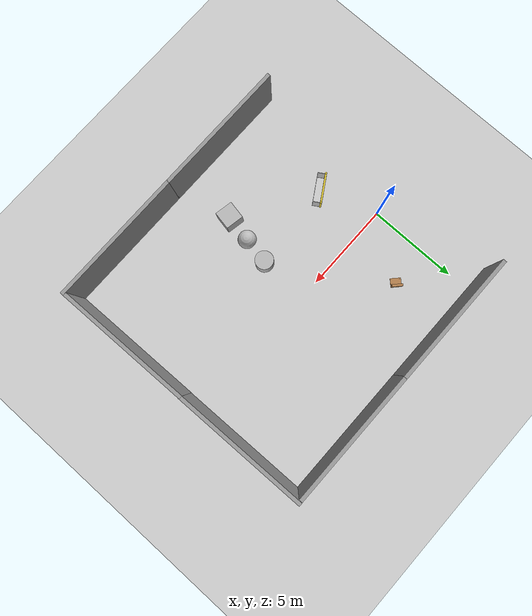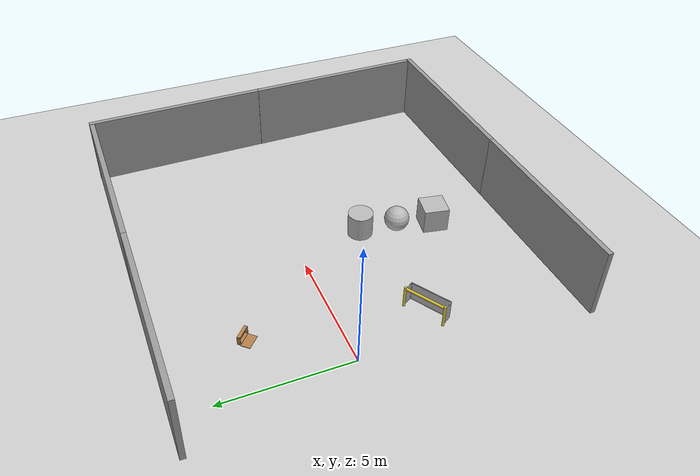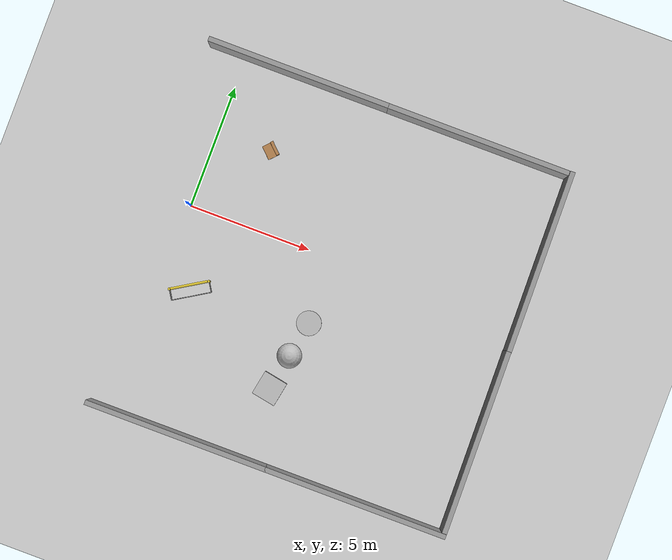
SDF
<sdf version="1.6">
 <world name="default">
  <scene><sky><clouds><speed>12</speed></clouds></sky></scene>
  <include><uri>model://sun</uri></include>
  <include><uri>model://ground_plane</uri></include>
  <gravity>0 0 -9.8</gravity>
  <magnetic_field>6e-06 2.3e-05 -4.2e-05</magnetic_field>
  <atmosphere type="adiabatic"/>
  <physics name="default_physics" default="0" type="ode">
   <max_step_size>0.001</max_step_size>
   <real_time_factor>1</real_time_factor>
   <real_time_update_rate>1000</real_time_update_rate>
  </physics>
  <spherical_coordinates>
   <surface_model>EARTH_WGS84</surface_model>
   <latitude_deg>0</latitude_deg>
   <longitude_deg>0</longitude_deg>
   <elevation>0</elevation>
   <heading_deg>0</heading_deg>
  </spherical_coordinates>
  <model name="grey_wall">
   <static>1</static>
   <link name="link">
    <pose>0 0 1.4 0 -0 0</pose>
    <collision name="collision"><geometry><box><size>7.5 0.2 2.8</size></box></geometry></collision>
    <visual name="visual">
     <cast_shadows>0</cast_shadows>
     <geometry><box><size>7.5 0.2 2.8</size></box></geometry>
     <material>
      <script>
       <uri>model://grey_wall/materials/scripts</uri>
       <uri>model://grey_wall/materials/textures</uri>
       <name>vrc/grey_wall</name>
      </script>
     </material>
    </visual>
   </link>
   <pose>9.73195 6.28446 0 0 -0 0</pose>
  </model>
  <model name="grey_wall_0">
   <static>1</static>
   <link name="link">
    <pose>0 0 1.4 0 -0 0</pose>
    <collision name="collision"><geometry><box><size>7.5 0.2 2.8</size></box></geometry></collision>
    <visual name="visual">
     <cast_shadows>0</cast_shadows>
     <geometry><box><size>7.5 0.2 2.8</size></box></geometry>
     <material>
      <script>
       <uri>model://grey_wall/materials/scripts</uri>
       <uri>model://grey_wall/materials/textures</uri>
       <name>vrc/grey_wall</name>
      </script>
     </material>
    </visual>
   </link>
   <pose>2.25508 6.28557 0 0 -0 0</pose>
  </model>
  <model name="grey_wall_1">
   <static>1</static>
   <link name="link">
    <pose>0 0 1.4 0 -0 0</pose>
    <collision name="collision"><geometry><box><size>7.5 0.2 2.8</size></box></geometry></collision>
    <visual name="visual">
     <cast_shadows>0</cast_shadows>
     <geometry><box><size>7.5 0.2 2.8</size></box></geometry>
     <material>
      <script>
       <uri>model://grey_wall/materials/scripts</uri>
       <uri>model://grey_wall/materials/textures</uri>
       <name>vrc/grey_wall</name>
      </script>
     </material>
    </visual>
   </link>
   <pose>10.1781 -8.63066 0 0 -0 0</pose>
  </model>
  <model name="grey_wall_2">
   <static>1</static>
   <link name="link">
    <pose>0 0 1.4 0 -0 0</pose>
    <collision name="collision"><geometry><box><size>7.5 0.2 2.8</size></box></geometry></collision>
    <visual name="visual">
     <cast_shadows>0</cast_shadows>
     <geometry><box><size>7.5 0.2 2.8</size></box></geometry>
     <material>
      <script>
       <uri>model://grey_wall/materials/scripts</uri>
       <uri>model://grey_wall/materials/textures</uri>
       <name>vrc/grey_wall</name>
      </script>
     </material>
    </visual>
   </link>
   <pose>2.71666 -8.63066 0 0 -0 0</pose>
  </model>
  <model name="grey_wall_3">
   <static>1</static>
   <link name="link">
    <pose>0 0 1.4 0 -0 0</pose>
    <collision name="collision"><geometry><box><size>7.5 0.2 2.8</size></box></geometry></collision>
    <visual name="visual">
     <cast_shadows>0</cast_shadows>
     <geometry><box><size>7.5 0.2 2.8</size></box></geometry>
     <material>
      <script>
       <uri>model://grey_wall/materials/scripts</uri>
       <uri>model://grey_wall/materials/textures</uri>
       <name>vrc/grey_wall</name>
      </script>
     </material>
    </visual>
   </link>
   <pose>13.6545 2.64301 -0 0 -0 1.58751</pose>
  </model>
  <model name="grey_wall_3_clone">
   <static>1</static>
   <link name="link">
    <pose>0 0 1.4 0 -0 0</pose>
    <collision name="collision"><geometry><box><size>7.5 0.2 2.8</size></box></geometry></collision>
    <visual name="visual">
     <cast_shadows>0</cast_shadows>
     <geometry><box><size>7.5 0.2 2.8</size></box></geometry>
     <material>
      <script>
       <uri>model://grey_wall/materials/scripts</uri>
       <uri>model://grey_wall/materials/textures</uri>
       <name>vrc/grey_wall</name>
      </script>
     </material>
    </visual>
   </link>
   <pose>13.768 -4.7744 0 0 -0 1.58751</pose>
  </model>
  <model name="wooden_case_metal_peg">
   <link name="wooden_case::base">
    <pose>0 0 0.024 0 -0 0</pose>
    <inertial>
     <pose>-0.022184 0 0.171592 0 -0 0</pose>
     <mass>3.96264</mass>
     <inertia>
      <ixx>0.213536</ixx>
      <ixy>0</ixy>
      <ixz>0.000779377</ixz>
      <iyy>0.0708943</iyy>
      <iyz>0</iyz>
      <izz>0.154604</izz>
     </inertia>
    </inertial>
    <collision name="collision_back">
     <pose>-0.053975 0 0.1778 0 -0 0</pose>
     <geometry><box><size>0.01905 0.5461 0.3175</size></box></geometry>
     <surface>
      <contact>
       <poissons_ratio>0.347</poissons_ratio>
       <elastic_modulus>8.8e+09</elastic_modulus>
       <ode><kp>100000</kp><kd>100</kd><max_vel>100</max_vel><min_depth>0.001</min_depth></ode>
      </contact>
      <friction>
       <torsional>
        <coefficient>1</coefficient>
        <use_patch_radius>0</use_patch_radius>
        <surface_radius>0.01</surface_radius>
       </torsional>
      </friction>
     </surface>
    </collision>
    <visual name="visual_back">
     <pose>-0.053975 0 0.1778 0 -0 0</pose>
     <geometry><box><size>0.01905 0.5461 0.3175</size></box></geometry>
     <material>
      <script><uri>file://media/materials/scripts/gazebo.material</uri><name>Gazebo/Wood</name></script>
     </material>
    </visual>
    <collision name="collision_bottom">
     <pose>0 0 0.009525 0 -0 0</pose>
     <geometry><box><size>0.127 0.5842 0.01905</size></box></geometry>
     <surface>
      <contact>
       <poissons_ratio>0.347</poissons_ratio>
       <elastic_modulus>8.8e+09</elastic_modulus>
       <ode><kp>100000</kp><kd>100</kd><max_vel>100</max_vel><min_depth>0.001</min_depth></ode>
      </contact>
      <friction>
       <torsional>
        <coefficient>1</coefficient>
        <use_patch_radius>0</use_patch_radius>
        <surface_radius>0.01</surface_radius>
       </torsional>
      </friction>
     </surface>
    </collision>
    <visual name="visual_bottom">
     <pose>0 0 0.009525 0 -0 0</pose>
     <geometry><box><size>0.127 0.5842 0.01905</size></box></geometry>
     <material>
      <script><uri>file://media/materials/scripts/gazebo.material</uri><name>Gazebo/Wood</name></script>
     </material>
    </visual>
    <collision name="collision_top">
     <pose>0 0 0.346075 0 -0 0</pose>
     <geometry><box><size>0.127 0.5842 0.01905</size></box></geometry>
     <surface>
      <contact>
       <poissons_ratio>0.347</poissons_ratio>
       <elastic_modulus>8.8e+09</elastic_modulus>
       <ode><kp>100000</kp><kd>100</kd><max_vel>100</max_vel><min_depth>0.001</min_depth></ode>
      </contact>
      <friction>
       <torsional>
        <coefficient>1</coefficient>
        <use_patch_radius>0</use_patch_radius>
        <surface_radius>0.01</surface_radius>
       </torsional>
      </friction>
     </surface>
    </collision>
    <visual name="visual_top">
     <pose>0 0 0.346075 0 -0 0</pose>
     <geometry><box><size>0.127 0.5842 0.01905</size></box></geometry>
     <material>
      <script><uri>file://media/materials/scripts/gazebo.material</uri><name>Gazebo/Wood</name></script>
     </material>
    </visual>
    <collision name="collision_left">
     <pose>0 -0.282575 0.1778 0 -0 0</pose>
     <geometry><box><size>0.127 0.01905 0.3175</size></box></geometry>
     <surface>
      <contact>
       <poissons_ratio>0.347</poissons_ratio>
       <elastic_modulus>8.8e+09</elastic_modulus>
       <ode><kp>100000</kp><kd>100</kd><max_vel>100</max_vel><min_depth>0.001</min_depth></ode>
      </contact>
      <friction>
       <torsional>
        <coefficient>1</coefficient>
        <use_patch_radius>0</use_patch_radius>
        <surface_radius>0.01</surface_radius>
       </torsional>
      </friction>
     </surface>
    </collision>
    <visual name="visual_left">
     <pose>0 -0.282575 0.1778 0 -0 0</pose>
     <geometry><box><size>0.127 0.01905 0.3175</size></box></geometry>
     <material>
      <script><uri>file://media/materials/scripts/gazebo.material</uri><name>Gazebo/Wood</name></script>
     </material>
    </visual>
    <collision name="collision_right">
     <pose>0 0.282575 0.1778 0 -0 0</pose>
     <geometry><box><size>0.127 0.01905 0.3175</size></box></geometry>
     <surface>
      <contact>
       <poissons_ratio>0.347</poissons_ratio>
       <elastic_modulus>8.8e+09</elastic_modulus>
       <ode><kp>100000</kp><kd>100</kd><max_vel>100</max_vel><min_depth>0.001</min_depth></ode>
      </contact>
      <friction>
       <torsional>
        <coefficient>1</coefficient>
        <use_patch_radius>0</use_patch_radius>
        <surface_radius>0.01</surface_radius>
       </torsional>
      </friction>
     </surface>
    </collision>
    <visual name="visual_right">
     <pose>0 0.282575 0.1778 0 -0 0</pose>
     <geometry><box><size>0.127 0.01905 0.3175</size></box></geometry>
     <material>
      <script><uri>file://media/materials/scripts/gazebo.material</uri><name>Gazebo/Wood</name></script>
     </material>
    </visual>
    <collision name="collision_block_left">
     <pose>0.0095 -0.2151 -0.012 0 -0 0</pose>
     <geometry><box><size>0.108 0.05 0.024</size></box></geometry>
     <surface>
      <contact>
       <poissons_ratio>0.347</poissons_ratio>
       <elastic_modulus>8.8e+09</elastic_modulus>
       <ode><kp>100000</kp><kd>100</kd><max_vel>100</max_vel><min_depth>0.001</min_depth></ode>
      </contact>
      <friction>
       <torsional>
        <coefficient>1</coefficient>
        <use_patch_radius>0</use_patch_radius>
        <surface_radius>0.01</surface_radius>
       </torsional>
      </friction>
     </surface>
    </collision>
    <visual name="visual_block_left">
     <pose>0.0095 -0.2151 -0.012 0 -0 0</pose>
     <geometry><box><size>0.108 0.05 0.024</size></box></geometry>
     <material>
      <script><uri>file://media/materials/scripts/gazebo.material</uri><name>Gazebo/Wood</name></script>
     </material>
    </visual>
    <collision name="collision_block_right">
     <pose>0.0095 0.2151 -0.012 0 -0 0</pose>
     <geometry><box><size>0.108 0.05 0.024</size></box></geometry>
     <surface>
      <contact>
       <poissons_ratio>0.347</poissons_ratio>
       <elastic_modulus>8.8e+09</elastic_modulus>
       <ode><kp>100000</kp><kd>100</kd><max_vel>100</max_vel><min_depth>0.001</min_depth></ode>
      </contact>
      <friction>
       <torsional>
        <coefficient>1</coefficient>
        <use_patch_radius>0</use_patch_radius>
        <surface_radius>0.01</surface_radius>
       </torsional>
      </friction>
     </surface>
    </collision>
    <visual name="visual_block_right">
     <pose>0.0095 0.2151 -0.012 0 -0 0</pose>
     <geometry><box><size>0.108 0.05 0.024</size></box></geometry>
     <material>
      <script><uri>file://media/materials/scripts/gazebo.material</uri><name>Gazebo/Wood</name></script>
     </material>
    </visual>
   </link>
   <link name="wooden_case::lid">
    <pose>0.243775 0 0.009525 0 -0 0</pose>
    <inertial>
     <mass>1.97874</mass>
     <inertia>
      <ixx>0.0563367</ixx>
      <ixy>0</ixy>
      <ixz>0</ixz>
      <iyy>0.020911</iyy>
      <iyz>0</iyz>
      <izz>0.0771281</izz>
     </inertia>
    </inertial>
    <collision name="collision">
     <geometry><box><size>0.3556 0.5842 0.01905</size></box></geometry>
     <surface>
      <contact>
       <poissons_ratio>0.347</poissons_ratio>
       <elastic_modulus>8.8e+09</elastic_modulus>
       <ode><kp>100000</kp><kd>100</kd><max_vel>100</max_vel><min_depth>0.001</min_depth></ode>
      </contact>
      <friction>
       <torsional>
        <coefficient>1</coefficient>
        <use_patch_radius>0</use_patch_radius>
        <surface_radius>0.01</surface_radius>
       </torsional>
      </friction>
     </surface>
    </collision>
    <visual name="visual">
     <geometry><box><size>0.3556 0.5842 0.01905</size></box></geometry>
     <material>
      <script><uri>file://media/materials/scripts/gazebo.material</uri><name>Gazebo/Wood</name></script>
     </material>
    </visual>
    <visual name="tee_nut_1">
     <pose>0.122 -0.216 0 0 -0 0</pose>
     <geometry><cylinder><radius>0.00635</radius><length>0.0192405</length></cylinder></geometry>
     <material>
      <script><uri>file://media/materials/scripts/gazebo.material</uri><name>Gazebo/Grey</name></script>
     </material>
    </visual>
    <visual name="tee_nut_2">
     <pose>0.122 -0.088 0 0 -0 0</pose>
     <geometry><cylinder><radius>0.00635</radius><length>0.0192405</length></cylinder></geometry>
     <material>
      <script><uri>file://media/materials/scripts/gazebo.material</uri><name>Gazebo/Grey</name></script>
     </material>
    </visual>
    <visual name="tee_nut_3">
     <pose>0.122 0.088 0 0 -0 0</pose>
     <geometry><cylinder><radius>0.00635</radius><length>0.0192405</length></cylinder></geometry>
     <material>
      <script><uri>file://media/materials/scripts/gazebo.material</uri><name>Gazebo/Grey</name></script>
     </material>
    </visual>
    <visual name="tee_nut_4">
     <pose>0.122 0.216 0 0 -0 0</pose>
     <geometry><cylinder><radius>0.00635</radius><length>0.0192405</length></cylinder></geometry>
     <material>
      <script><uri>file://media/materials/scripts/gazebo.material</uri><name>Gazebo/Grey</name></script>
     </material>
    </visual>
   </link>
   <joint name="wooden_case::lid_hinge" type="revolute">
    <pose>-0.1778 0 0.01905 0 -0 0</pose>
    <parent>wooden_case::base</parent>
    <child>wooden_case::lid</child>
    <axis>
     <xyz>0 1 0</xyz>
     <limit><upper>0.523599</upper><lower>-1.5708</lower></limit>
     <use_parent_model_frame>0</use_parent_model_frame>
     <dynamics><spring_reference>0</spring_reference><spring_stiffness>0</spring_stiffness></dynamics>
    </axis>
   </joint>
   <link name="peg::link">
    <pose>0.365774 0.216 0.05005 0 -0 0</pose>
    <inertial>
     <mass>0.0121</mass>
     <inertia>
      <ixx>3.90898e-06</ixx>
      <ixy>0</ixy>
      <ixz>0</ixz>
      <iyy>3.90898e-06</iyy>
      <iyz>0</iyz>
      <izz>6.58845e-08</izz>
     </inertia>
    </inertial>
    <collision name="collision">
     <geometry><cylinder><radius>0.0033</radius><length>0.062</length></cylinder></geometry>
     <surface>
      <contact>
       <poissons_ratio>0.305</poissons_ratio>
       <elastic_modulus>2e+11</elastic_modulus>
       <ode><kp>100000</kp><kd>100</kd><max_vel>100</max_vel><min_depth>0.001</min_depth></ode>
      </contact>
      <friction>
       <torsional>
        <coefficient>1</coefficient>
        <use_patch_radius>0</use_patch_radius>
        <surface_radius>0.01</surface_radius>
       </torsional>
      </friction>
     </surface>
    </collision>
    <visual name="visual">
     <geometry><cylinder><radius>0.0033</radius><length>0.062</length></cylinder></geometry>
     <material>
      <script><uri>file://media/materials/scripts/gazebo.material</uri><name>Gazebo/Grey</name></script>
     </material>
    </visual>
   </link>
   <joint name="case_peg" type="revolute">
    <child>peg::link</child>
    <parent>wooden_case::lid</parent>
    <axis>
     <xyz>0 0 1</xyz>
     <limit><upper>0</upper><lower>0</lower></limit>
     <use_parent_model_frame>0</use_parent_model_frame>
     <dynamics><spring_reference>0</spring_reference><spring_stiffness>0</spring_stiffness></dynamics>
    </axis>
   </joint>
   <pose>2.32615 3.304 -0.001058 -0 -0.000504 -2.32631</pose>
  </model>
  <model name="textured_shapes">
   <pose>5.75482 -4.19262 0.5 0 -0 -0.184937</pose>
   <link name="box">
    <pose>0 -1.5 0 0 -0 0</pose>
    <collision name="collision"><geometry><box><size>1 1 1</size></box></geometry></collision>
    <visual name="visual">
     <geometry><box><size>1 1 1</size></box></geometry>
     <material>
      <script>
       <uri>model://textured_shapes/materials/scripts</uri>
       <uri>model://textured_shapes/materials/textures</uri>
       <name>TexturedShape/Squares</name>
      </script>
     </material>
    </visual>
    <inertial>
     <inertia><ixx>1</ixx><ixy>0</ixy><ixz>0</ixz><iyy>1</iyy><iyz>0</iyz><izz>1</izz></inertia>
     <mass>1</mass>
    </inertial>
   </link>
   <link name="sphere">
    <collision name="collision"><geometry><sphere><radius>0.5</radius></sphere></geometry></collision>
    <visual name="visual">
     <geometry><sphere><radius>0.5</radius></sphere></geometry>
     <material>
      <script>
       <uri>model://textured_shapes/materials/scripts</uri>
       <uri>model://textured_shapes/materials/textures</uri>
       <name>TexturedShape/Squares</name>
      </script>
     </material>
    </visual>
    <inertial>
     <inertia><ixx>1</ixx><ixy>0</ixy><ixz>0</ixz><iyy>1</iyy><iyz>0</iyz><izz>1</izz></inertia>
     <mass>1</mass>
    </inertial>
   </link>
   <link name="cylinder">
    <pose>0 1.5 0 0 -0 0</pose>
    <collision name="collision">
     <geometry><cylinder><radius>0.5</radius><length>1</length></cylinder></geometry>
    </collision>
    <visual name="visual">
     <geometry><cylinder><radius>0.5</radius><length>1</length></cylinder></geometry>
     <material>
      <script>
       <uri>model://textured_shapes/materials/scripts</uri>
       <uri>model://textured_shapes/materials/textures</uri>
       <name>TexturedShape/Squares</name>
      </script>
     </material>
    </visual>
    <inertial>
     <inertia><ixx>1</ixx><ixy>0</ixy><ixz>0</ixz><iyy>1</iyy><iyz>0</iyz><izz>1</izz></inertia>
     <mass>1</mass>
    </inertial>
   </link>
  </model>
  <model name="RoboCup 2014 SPL Goal">
   <static>1</static>
   <link name="left_post">
    <pose>0 0.8 0.45 0 -0 0</pose>
    <collision name="collision">
     <geometry><cylinder><radius>0.05</radius><length>0.9</length></cylinder></geometry>
    </collision>
    <visual name="visual">
     <geometry><cylinder><radius>0.05</radius><length>0.9</length></cylinder></geometry>
     <material>
      <script><uri>file://media/materials/scripts/gazebo.material</uri><name>Gazebo/ZincYellow</name></script>
     </material>
    </visual>
   </link>
   <link name="left_support_horiz_lower">
    <pose>0.24 0.8 0.01 0 -0 0</pose>
    <collision name="collision"><geometry><box><size>0.38 0.02 0.02</size></box></geometry></collision>
    <visual name="visual">
     <geometry><box><size>0.38 0.02 0.02</size></box></geometry>
     <material>
      <script><uri>file://media/materials/scripts/gazebo.material</uri><name>Gazebo/White</name></script>
     </material>
    </visual>
   </link>
   <link name="left_support_horiz_upper">
    <pose>0.24 0.8 0.79 0 -0 0</pose>
    <collision name="collision"><geometry><box><size>0.38 0.02 0.02</size></box></geometry></collision>
    <visual name="visual">
     <geometry><box><size>0.38 0.02 0.02</size></box></geometry>
     <material>
      <script><uri>file://media/materials/scripts/gazebo.material</uri><name>Gazebo/White</name></script>
     </material>
    </visual>
   </link>
   <link name="left_support_vertical">
    <pose>0.44 0.8 0.4 3.14159 1.57079 3.14159</pose>
    <collision name="collision"><geometry><box><size>0.8 0.02 0.02</size></box></geometry></collision>
    <visual name="visual">
     <geometry><box><size>0.8 0.02 0.02</size></box></geometry>
     <material>
      <script><uri>file://media/materials/scripts/gazebo.material</uri><name>Gazebo/White</name></script>
     </material>
    </visual>
   </link>
   <link name="right_support_horiz_lower">
    <pose>0.24 -0.8 0.01 0 -0 0</pose>
    <collision name="collision"><geometry><box><size>0.38 0.02 0.02</size></box></geometry></collision>
    <visual name="visual">
     <geometry><box><size>0.38 0.02 0.02</size></box></geometry>
     <material>
      <script><uri>file://media/materials/scripts/gazebo.material</uri><name>Gazebo/White</name></script>
     </material>
    </visual>
   </link>
   <link name="right_support_horiz_upper">
    <pose>0.24 -0.8 0.79 0 -0 0</pose>
    <collision name="collision"><geometry><box><size>0.38 0.02 0.02</size></box></geometry></collision>
    <visual name="visual">
     <geometry><box><size>0.38 0.02 0.02</size></box></geometry>
     <material>
      <script><uri>file://media/materials/scripts/gazebo.material</uri><name>Gazebo/White</name></script>
     </material>
    </visual>
   </link>
   <link name="right_support_vertical">
    <pose>0.44 -0.8 0.4 3.14159 1.57079 3.14159</pose>
    <collision name="collision"><geometry><box><size>0.8 0.02 0.02</size></box></geometry></collision>
    <visual name="visual">
     <geometry><box><size>0.8 0.02 0.02</size></box></geometry>
     <material>
      <script><uri>file://media/materials/scripts/gazebo.material</uri><name>Gazebo/White</name></script>
     </material>
    </visual>
   </link>
   <link name="center_support_horiz_lower">
    <pose>0.44 0 0.01 3.14159 1.57079 3.14159</pose>
    <collision name="collision"><geometry><box><size>0.02 1.58 0.02</size></box></geometry></collision>
    <visual name="visual">
     <geometry><box><size>0.02 1.58 0.02</size></box></geometry>
     <material>
      <script><uri>file://media/materials/scripts/gazebo.material</uri><name>Gazebo/White</name></script>
     </material>
    </visual>
   </link>
   <link name="center_support_horiz_upper">
    <pose>0.44 0 0.79 3.14159 1.57079 3.14159</pose>
    <collision name="collision"><geometry><box><size>0.02 1.58 0.02</size></box></geometry></collision>
    <visual name="visual">
     <geometry><box><size>0.02 1.58 0.02</size></box></geometry>
     <material>
      <script><uri>file://media/materials/scripts/gazebo.material</uri><name>Gazebo/White</name></script>
     </material>
    </visual>
   </link>
   <link name="right_post">
    <pose>0 -0.8 0.45 0 -0 0</pose>
    <collision name="collision">
     <geometry><cylinder><radius>0.05</radius><length>0.9</length></cylinder></geometry>
    </collision>
    <visual name="visual">
     <geometry><cylinder><radius>0.05</radius><length>0.9</length></cylinder></geometry>
     <material>
      <script><uri>file://media/materials/scripts/gazebo.material</uri><name>Gazebo/ZincYellow</name></script>
     </material>
    </visual>
   </link>
   <link name="crossbar">
    <pose>0 0 0.85 1.57 1.57 0</pose>
    <collision name="collision">
     <geometry><cylinder><radius>0.05</radius><length>1.5</length></cylinder></geometry>
    </collision>
    <visual name="visual">
     <geometry><cylinder><radius>0.05</radius><length>1.5</length></cylinder></geometry>
     <material>
      <script><uri>file://media/materials/scripts/gazebo.material</uri><name>Gazebo/ZincYellow</name></script>
     </material>
    </visual>
   </link>
   <link name="center_net">
    <pose>0.44 0 0.4 0 -0 0</pose>
    <collision name="collision"><geometry><box><size>0.01 1.6 0.8</size></box></geometry></collision>
    <visual name="visual">
     <geometry><box><size>0.01 1.6 0.8</size></box></geometry>
     <material>
      <script>
       <uri>model://robocup09_spl_field/materials/scripts/</uri>
       <uri>model://robocup09_spl_field/materials/textures/</uri>
       <name>RoboCup/Net</name>
      </script>
     </material>
    </visual>
   </link>
   <link name="left_net">
    <pose>0.24 0.8 0.4 0 -0 0</pose>
    <collision name="collision"><geometry><box><size>0.38 0.01 0.76</size></box></geometry></collision>
    <visual name="visual">
     <geometry><box><size>0.38 0.01 0.76</size></box></geometry>
     <material>
      <script>
       <uri>model://robocup09_spl_field/materials/scripts/</uri>
       <uri>model://robocup09_spl_field/materials/textures/</uri>
       <name>RoboCup/Net</name>
      </script>
     </material>
    </visual>
   </link>
   <link name="right_net">
    <pose>0.24 -0.8 0.4 0 -0 0</pose>
    <collision name="collision"><geometry><box><size>0.38 0.01 0.76</size></box></geometry></collision>
    <visual name="visual">
     <geometry><box><size>0.38 0.01 0.76</size></box></geometry>
     <material>
      <script>
       <uri>model://robocup09_spl_field/materials/scripts/</uri>
       <uri>model://robocup09_spl_field/materials/textures/</uri>
       <name>RoboCup/Net</name>
      </script>
     </material>
    </visual>
   </link>
   <pose>1.06668 -2.96876 0 0 0 -1.01973</pose>
  </model>
 </world>
</sdf>
